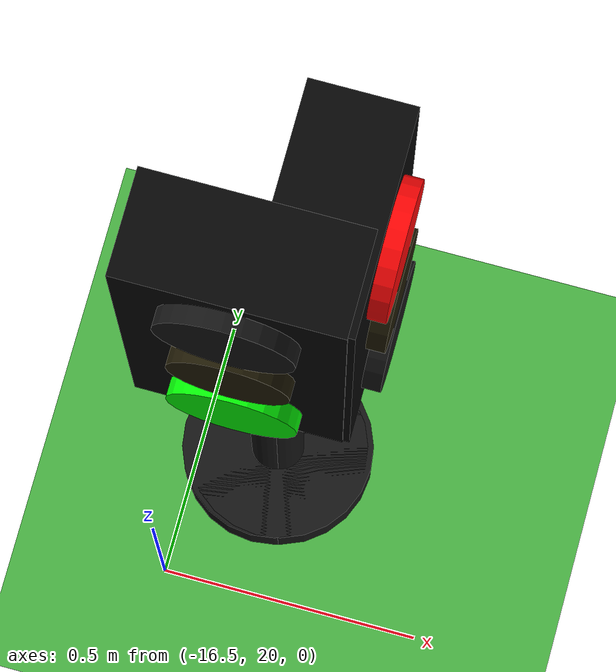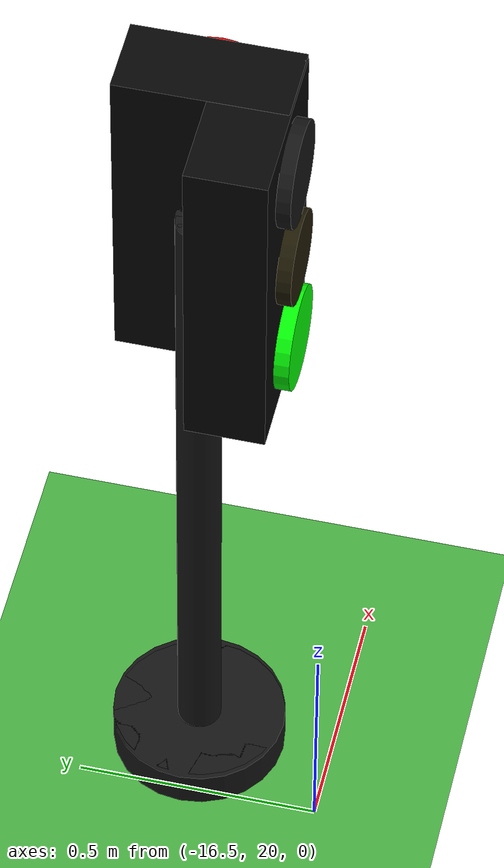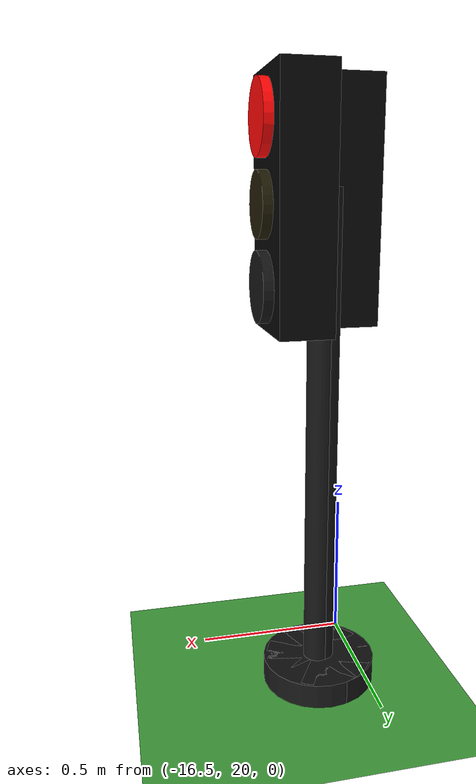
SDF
<sdf version="1.10">
 <world name="city_second">
  <model name="ground_plane">
   <static>true</static>
   <link name="link">
    <collision name="collision">
     <geometry><plane><normal>0 0 1</normal><size>300 300</size></plane></geometry>
    </collision>
    <visual name="visual">
     <geometry><plane><normal>0 0 1</normal><size>300 300</size></plane></geometry>
     <material>
      <ambient>0.280000001 0.689999998 0.25999999 1</ambient>
      <diffuse>0.280000001 0.689999998 0.25999999 1</diffuse>
      <specular>0.0299999993 0.0299999993 0.0299999993 1</specular>
     </material>
    </visual>
    <inertial>
     <mass>1</mass>
     <inertia><ixx>1</ixx><ixy>0</ixy><ixz>0</ixz><iyy>1</iyy><iyz>0</iyz><izz>1</izz></inertia>
    </inertial>
   </link>
  </model>
  <model name="simple_traffic_light_green_south_1_3_1">
   <static>true</static>
   <pose>-16.354454184301069 20.279661688850851 0 0 0 -3.1415900000000754</pose>
   <link name="base">
    <pose>0 0 0.040000000000000001 0 0 0</pose>
    <collision name="collision">
     <geometry>
      <cylinder><radius>0.17999999999999999</radius><length>0.080000000000000002</length></cylinder>
     </geometry>
    </collision>
    <visual name="visual">
     <geometry>
      <cylinder><radius>0.17999999999999999</radius><length>0.080000000000000002</length></cylinder>
     </geometry>
     <material>
      <ambient>0.0799999982 0.0799999982 0.0799999982 1</ambient>
      <diffuse>0.0799999982 0.0799999982 0.0799999982 1</diffuse>
      <specular>0.150000006 0.150000006 0.150000006 1</specular>
      <emissive>0 0 0 1</emissive>
     </material>
    </visual>
    <inertial>
     <mass>1</mass>
     <inertia><ixx>1</ixx><ixy>0</ixy><ixz>0</ixz><iyy>1</iyy><iyz>0</iyz><izz>1</izz></inertia>
    </inertial>
   </link>
   <link name="pole">
    <pose>3.1974423109204508e-14 3.1974423109204508e-14 0.80000000000000104 0 0 0</pose>
    <collision name="collision">
     <geometry>
      <cylinder><radius>0.044999999999999998</radius><length>1.6000000000000001</length></cylinder>
     </geometry>
    </collision>
    <visual name="visual">
     <geometry>
      <cylinder><radius>0.044999999999999998</radius><length>1.6000000000000001</length></cylinder>
     </geometry>
     <material>
      <ambient>0.0799999982 0.0799999982 0.0799999982 1</ambient>
      <diffuse>0.0799999982 0.0799999982 0.0799999982 1</diffuse>
      <specular>0.150000006 0.150000006 0.150000006 1</specular>
      <emissive>0 0 0 1</emissive>
     </material>
    </visual>
    <inertial>
     <mass>1</mass>
     <inertia><ixx>1</ixx><ixy>0</ixy><ixz>0</ixz><iyy>1</iyy><iyz>0</iyz><izz>1</izz></inertia>
    </inertial>
   </link>
   <link name="signal_box">
    <pose>3.1974423109204508e-14 0.090000000000031832 1.550000000000002 0 0 0</pose>
    <collision name="collision">
     <geometry><box><size>0.34000000000000002 0.16 0.71999999999999997</size></box></geometry>
    </collision>
    <visual name="visual">
     <geometry><box><size>0.34000000000000002 0.16 0.71999999999999997</size></box></geometry>
     <material>
      <ambient>0.0199999996 0.0199999996 0.0199999996 1</ambient>
      <diffuse>0.0199999996 0.0199999996 0.0199999996 1</diffuse>
      <specular>0.150000006 0.150000006 0.150000006 1</specular>
      <emissive>0 0 0 1</emissive>
     </material>
    </visual>
    <inertial>
     <mass>1</mass>
     <inertia><ixx>1</ixx><ixy>0</ixy><ixz>0</ixz><iyy>1</iyy><iyz>0</iyz><izz>1</izz></inertia>
    </inertial>
   </link>
   <link name="red_lens">
    <pose>3.1974423109204508e-14 0.18099999999999739 1.78 1.5707963267999998 1.2475048931562623e-16 -1.2475078878636004e-16</pose>
    <collision name="collision">
     <geometry><cylinder><radius>0.105</radius><length>0.035000000000000003</length></cylinder></geometry>
    </collision>
    <visual name="visual">
     <geometry><cylinder><radius>0.105</radius><length>0.035000000000000003</length></cylinder></geometry>
     <material>
      <ambient>0.0799999982 0.0799999982 0.0799999982 1</ambient>
      <diffuse>0.0799999982 0.0799999982 0.0799999982 1</diffuse>
      <specular>0.150000006 0.150000006 0.150000006 1</specular>
      <emissive>0 0 0 1</emissive>
     </material>
    </visual>
    <inertial>
     <mass>1</mass>
     <inertia><ixx>1</ixx><ixy>0</ixy><ixz>0</ixz><iyy>1</iyy><iyz>0</iyz><izz>1</izz></inertia>
    </inertial>
   </link>
   <link name="yellow_lens">
    <pose>0 0.18200000000003058 1.550000000000002 1.5707963267999998 1.2475048931562623e-16 -1.2475078878636004e-16</pose>
    <collision name="collision">
     <geometry>
      <cylinder><radius>0.095000000000000001</radius><length>0.035000000000000003</length></cylinder>
     </geometry>
    </collision>
    <visual name="visual">
     <geometry>
      <cylinder><radius>0.095000000000000001</radius><length>0.035000000000000003</length></cylinder>
     </geometry>
     <material>
      <ambient>0.119999997 0.100000001 0.0199999996 1</ambient>
      <diffuse>0.119999997 0.100000001 0.0199999996 1</diffuse>
      <specular>0.150000006 0.150000006 0.150000006 1</specular>
      <emissive>0 0 0 1</emissive>
     </material>
    </visual>
    <inertial>
     <mass>1</mass>
     <inertia><ixx>1</ixx><ixy>0</ixy><ixz>0</ixz><iyy>1</iyy><iyz>0</iyz><izz>1</izz></inertia>
    </inertial>
   </link>
   <link name="green_lens">
    <pose>3.1974423109204508e-14 0.1830000000000318 1.3200000000000021 1.5707963267999998 1.2475048931562623e-16 -1.2475078878636004e-16</pose>
    <collision name="collision">
     <geometry><cylinder><radius>0.105</radius><length>0.035000000000000003</length></cylinder></geometry>
    </collision>
    <visual name="visual">
     <geometry><cylinder><radius>0.105</radius><length>0.035000000000000003</length></cylinder></geometry>
     <material>
      <ambient>0.0199999996 1 0.0199999996 1</ambient>
      <diffuse>0.0199999996 1 0.0199999996 1</diffuse>
      <specular>0.150000006 0.150000006 0.150000006 1</specular>
      <emissive>0.0199999996 1 0.0199999996 1</emissive>
     </material>
    </visual>
    <inertial>
     <mass>1</mass>
     <inertia><ixx>1</ixx><ixy>0</ixy><ixz>0</ixz><iyy>1</iyy><iyz>0</iyz><izz>1</izz></inertia>
    </inertial>
   </link>
  </model>
  <model name="simple_traffic_light_red_east_6">
   <static>true</static>
   <pose>-16.3438603016297 20.282682133962247 -2.7755575615628914e-17 0 0 -1.5707999672671753</pose>
   <link name="base">
    <pose>0 0 0.040000000000000001 0 0 0</pose>
    <collision name="collision">
     <geometry>
      <cylinder><radius>0.17999999999999999</radius><length>0.080000000000000002</length></cylinder>
     </geometry>
    </collision>
    <visual name="visual">
     <geometry>
      <cylinder><radius>0.17999999999999999</radius><length>0.080000000000000002</length></cylinder>
     </geometry>
     <material>
      <ambient>0.0799999982 0.0799999982 0.0799999982 1</ambient>
      <diffuse>0.0799999982 0.0799999982 0.0799999982 1</diffuse>
      <specular>0.150000006 0.150000006 0.150000006 1</specular>
      <emissive>0 0 0 1</emissive>
     </material>
    </visual>
    <inertial>
     <mass>1</mass>
     <inertia><ixx>1</ixx><ixy>0</ixy><ixz>0</ixz><iyy>1</iyy><iyz>0</iyz><izz>1</izz></inertia>
    </inertial>
   </link>
   <link name="pole">
    <pose>-4.6185277824406512e-14 -1.7763568394002505e-14 0.80000000000000004 0 0 -1.1102230246251565e-16</pose>
    <collision name="collision">
     <geometry>
      <cylinder><radius>0.044999999999999998</radius><length>1.6000000000000001</length></cylinder>
     </geometry>
    </collision>
    <visual name="visual">
     <geometry>
      <cylinder><radius>0.044999999999999998</radius><length>1.6000000000000001</length></cylinder>
     </geometry>
     <material>
      <ambient>0.0799999982 0.0799999982 0.0799999982 1</ambient>
      <diffuse>0.0799999982 0.0799999982 0.0799999982 1</diffuse>
      <specular>0.150000006 0.150000006 0.150000006 1</specular>
      <emissive>0 0 0 1</emissive>
     </material>
    </visual>
    <inertial>
     <mass>1</mass>
     <inertia><ixx>1</ixx><ixy>0</ixy><ixz>0</ixz><iyy>1</iyy><iyz>0</iyz><izz>1</izz></inertia>
    </inertial>
   </link>
   <link name="signal_box">
    <pose>-3.1974423109204508e-14 0.089999999999978542 1.5500000000000003 0 0 -1.1102230246251565e-16</pose>
    <collision name="collision">
     <geometry><box><size>0.34000000000000002 0.16 0.71999999999999997</size></box></geometry>
    </collision>
    <visual name="visual">
     <geometry><box><size>0.34000000000000002 0.16 0.71999999999999997</size></box></geometry>
     <material>
      <ambient>0.0199999996 0.0199999996 0.0199999996 1</ambient>
      <diffuse>0.0199999996 0.0199999996 0.0199999996 1</diffuse>
      <specular>0.150000006 0.150000006 0.150000006 1</specular>
      <emissive>0 0 0 1</emissive>
     </material>
    </visual>
    <inertial>
     <mass>1</mass>
     <inertia><ixx>1</ixx><ixy>0</ixy><ixz>0</ixz><iyy>1</iyy><iyz>0</iyz><izz>1</izz></inertia>
    </inertial>
   </link>
   <link name="red_lens">
    <pose>-2.8421709430404007e-14 0.18099999999996541 1.7800000000000002 1.5707963268000005 -7.8504622949614379e-17 6.0448559659323335e-15</pose>
    <collision name="collision">
     <geometry><cylinder><radius>0.105</radius><length>0.035000000000000003</length></cylinder></geometry>
    </collision>
    <visual name="visual">
     <geometry><cylinder><radius>0.105</radius><length>0.035000000000000003</length></cylinder></geometry>
     <material>
      <ambient>1 0.0199999996 0.0199999996 1</ambient>
      <diffuse>1 0.0199999996 0.0199999996 1</diffuse>
      <specular>0.150000006 0.150000006 0.150000006 1</specular>
      <emissive>1 0.0199999996 0.0199999996 1</emissive>
     </material>
    </visual>
    <inertial>
     <mass>1</mass>
     <inertia><ixx>1</ixx><ixy>0</ixy><ixz>0</ixz><iyy>1</iyy><iyz>0</iyz><izz>1</izz></inertia>
    </inertial>
   </link>
   <link name="yellow_lens">
    <pose>-3.5527136788005009e-14 0.18199999999998084 1.5500000000000003 1.5707963268000005 -7.8504622949614379e-17 6.0448559659323335e-15</pose>
    <collision name="collision">
     <geometry>
      <cylinder><radius>0.095000000000000001</radius><length>0.035000000000000003</length></cylinder>
     </geometry>
    </collision>
    <visual name="visual">
     <geometry>
      <cylinder><radius>0.095000000000000001</radius><length>0.035000000000000003</length></cylinder>
     </geometry>
     <material>
      <ambient>0.119999997 0.100000001 0.0199999996 1</ambient>
      <diffuse>0.119999997 0.100000001 0.0199999996 1</diffuse>
      <specular>0.150000006 0.150000006 0.150000006 1</specular>
      <emissive>0 0 0 1</emissive>
     </material>
    </visual>
    <inertial>
     <mass>1</mass>
     <inertia><ixx>1</ixx><ixy>0</ixy><ixz>0</ixz><iyy>1</iyy><iyz>0</iyz><izz>1</izz></inertia>
    </inertial>
   </link>
   <link name="green_lens">
    <pose>-3.907985046680551e-14 0.18299999999999628 1.3199999999999998 1.5707963268000005 -7.8504622949614379e-17 6.0448559659323335e-15</pose>
    <collision name="collision">
     <geometry><cylinder><radius>0.105</radius><length>0.035000000000000003</length></cylinder></geometry>
    </collision>
    <visual name="visual">
     <geometry><cylinder><radius>0.105</radius><length>0.035000000000000003</length></cylinder></geometry>
     <material>
      <ambient>0.0799999982 0.0799999982 0.0799999982 1</ambient>
      <diffuse>0.0799999982 0.0799999982 0.0799999982 1</diffuse>
      <specular>0.150000006 0.150000006 0.150000006 1</specular>
      <emissive>0 0 0 1</emissive>
     </material>
    </visual>
    <inertial>
     <mass>1</mass>
     <inertia><ixx>1</ixx><ixy>0</ixy><ixz>0</ixz><iyy>1</iyy><iyz>0</iyz><izz>1</izz></inertia>
    </inertial>
   </link>
  </model>
 </world>
</sdf>
